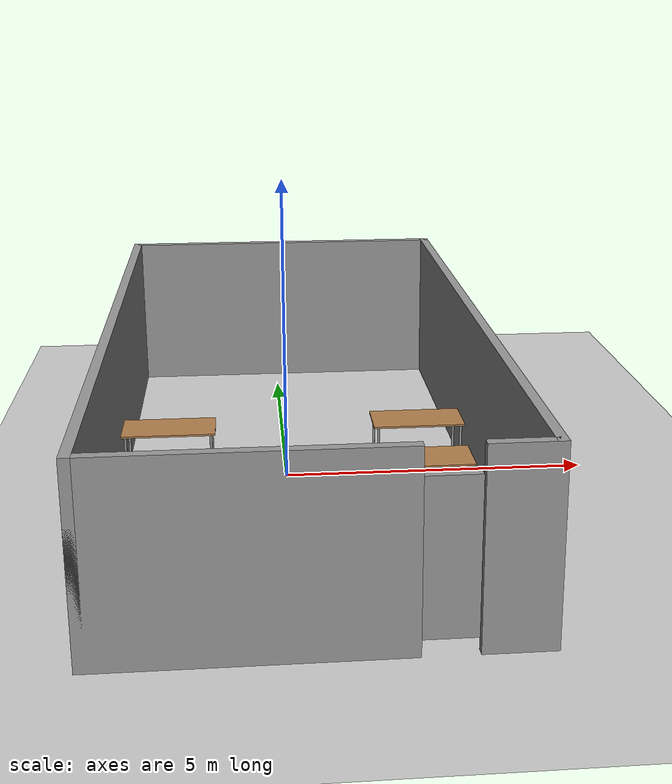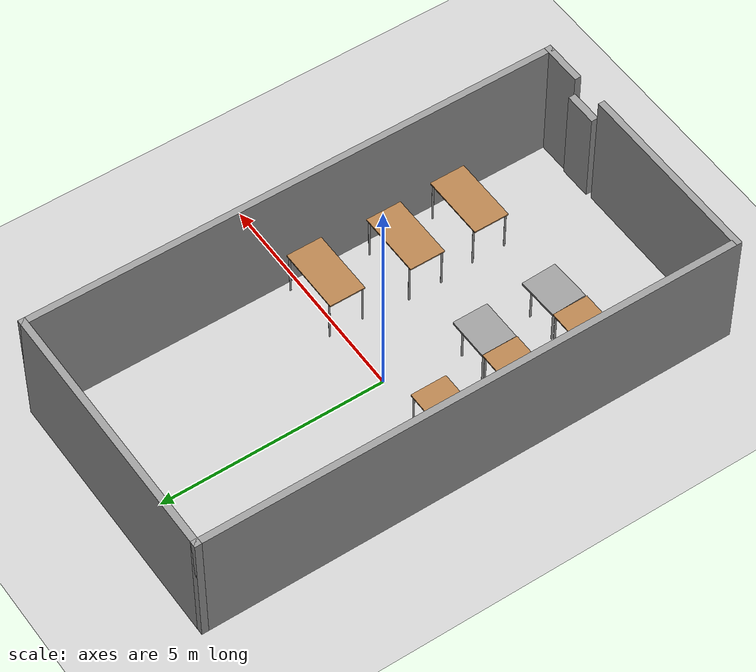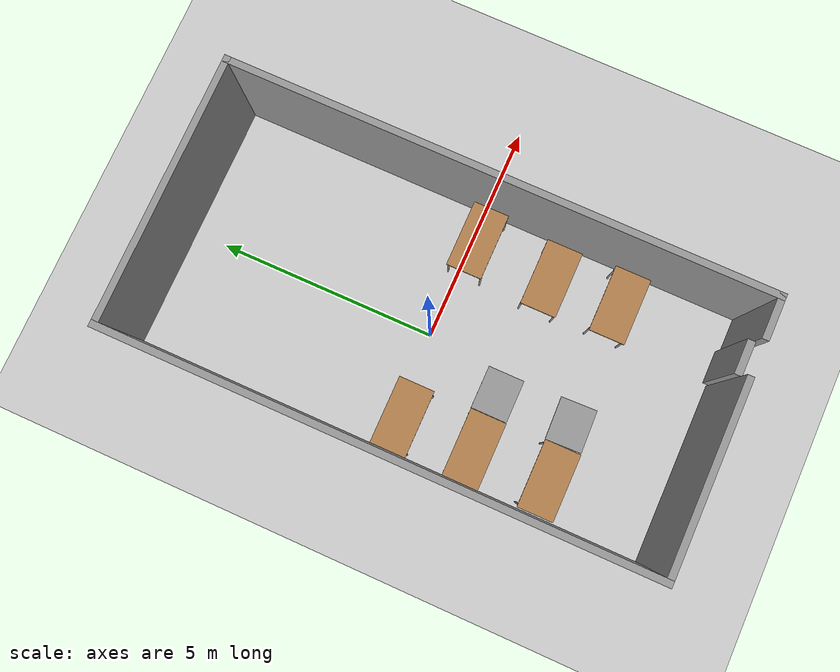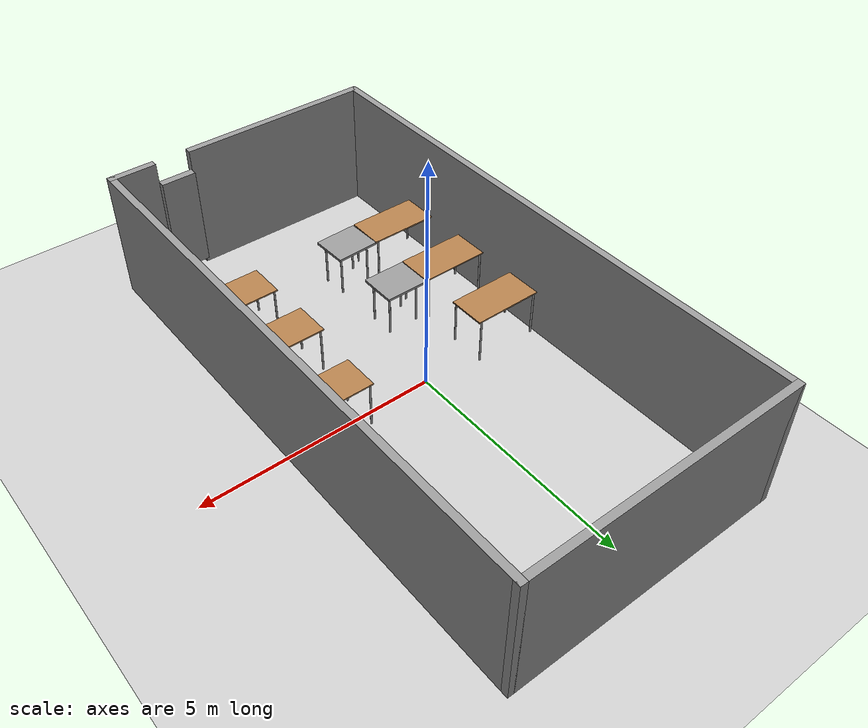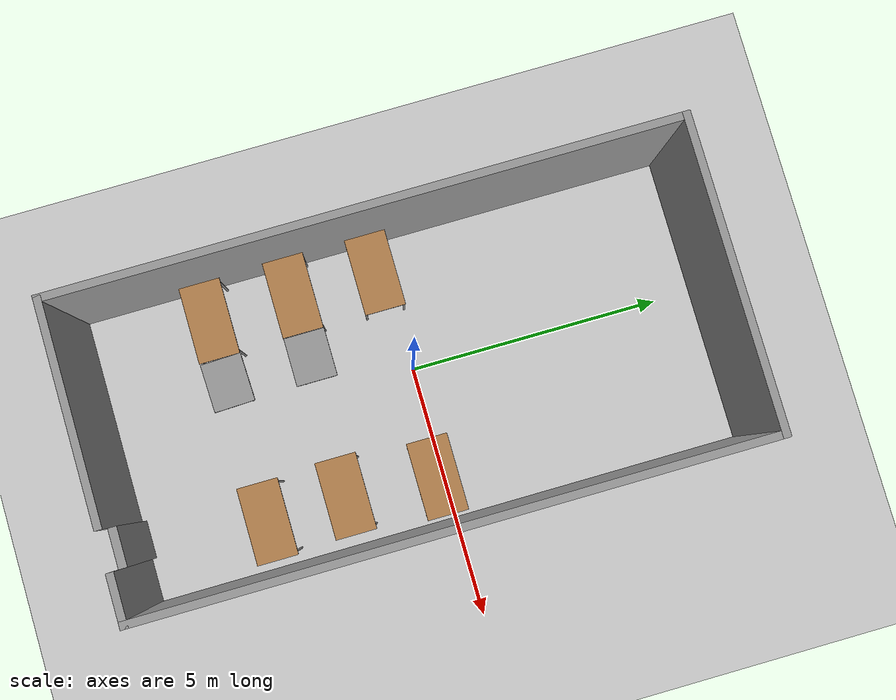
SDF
<sdf version="1.7">
 <world name="default">
  <model name="ground_plane">
   <static>1</static>
   <link name="link">
    <collision name="collision">
     <geometry><plane><normal>0 0 1</normal><size>100 100</size></plane></geometry>
     <surface>
      <contact><collide_bitmask>65535</collide_bitmask></contact>
      <friction><ode><mu>100</mu><mu2>50</mu2></ode></friction>
     </surface>
    </collision>
    <visual name="visual">
     <cast_shadows>0</cast_shadows>
     <geometry><plane><normal>0 0 1</normal><size>100 100</size></plane></geometry>
     <material>
      <script><uri>file://media/materials/scripts/gazebo.material</uri><name>Gazebo/Grey</name></script>
     </material>
    </visual>
   </link>
  </model>
  <model name="yh_room">
   <pose>0.178557 -0.120758 0 0 -0 0</pose>
   <link name="Wall_13">
    <collision name="Wall_13_Collision">
     <geometry><box><size>6 0.15 2.8</size></box></geometry>
     <pose>0 0 1.4 0 -0 0</pose>
    </collision>
    <visual name="Wall_13_Visual">
     <pose>0 0 1.4 0 -0 0</pose>
     <geometry><box><size>6 0.15 2.8</size></box></geometry>
     <material>
      <script><uri>file://media/materials/scripts/gazebo.material</uri><name>Gazebo/Grey</name></script>
      <ambient>1 1 1 1</ambient>
     </material>
     <meta><layer>0</layer></meta>
    </visual>
    <pose>-0 5.925 0 0 -0 0</pose>
   </link>
   <link name="Wall_15">
    <collision name="Wall_15_Collision">
     <geometry><box><size>12 0.15 2.8</size></box></geometry>
     <pose>0 0 1.4 0 -0 0</pose>
    </collision>
    <visual name="Wall_15_Visual">
     <pose>0 0 1.4 0 -0 0</pose>
     <geometry><box><size>12 0.15 2.8</size></box></geometry>
     <material>
      <script><uri>file://media/materials/scripts/gazebo.material</uri><name>Gazebo/Grey</name></script>
      <ambient>1 1 1 1</ambient>
     </material>
     <meta><layer>0</layer></meta>
    </visual>
    <pose>-2.925 0 0 0 -0 -1.5708</pose>
   </link>
   <link name="Wall_18">
    <collision name="Wall_18_Collision">
     <geometry><box><size>12 0.15 2.8</size></box></geometry>
     <pose>0 0 1.4 0 -0 0</pose>
    </collision>
    <visual name="Wall_18_Visual">
     <pose>0 0 1.4 0 -0 0</pose>
     <geometry><box><size>12 0.15 2.8</size></box></geometry>
     <material>
      <script><uri>file://media/materials/scripts/gazebo.material</uri><name>Gazebo/Grey</name></script>
      <ambient>1 1 1 1</ambient>
     </material>
     <meta><layer>0</layer></meta>
    </visual>
    <pose>2.925 0 0 0 -0 1.5708</pose>
   </link>
   <link name="Wall_21">
    <collision name="Wall_21_Collision">
     <geometry><box><size>1 0.15 2.8</size></box></geometry>
     <pose>0 0 1.4 0 -0 0</pose>
    </collision>
    <visual name="Wall_21_Visual">
     <pose>0 0 1.4 0 -0 0</pose>
     <geometry><box><size>1 0.15 2.8</size></box></geometry>
     <material>
      <script><uri>file://media/materials/scripts/gazebo.material</uri><name>Gazebo/Grey</name></script>
      <ambient>1 1 1 1</ambient>
     </material>
     <meta><layer>0</layer></meta>
    </visual>
    <pose>2.5 -5.925 0 0 -0 3.14159</pose>
   </link>
   <link name="Wall_23">
    <collision name="Wall_23_Collision">
     <geometry><box><size>4.25 0.15 2.8</size></box></geometry>
     <pose>0 0 1.4 0 -0 0</pose>
    </collision>
    <visual name="Wall_23_Visual">
     <pose>0 0 1.4 0 -0 0</pose>
     <geometry><box><size>4.25 0.15 2.8</size></box></geometry>
     <material>
      <script><uri>file://media/materials/scripts/gazebo.material</uri><name>Gazebo/Grey</name></script>
      <ambient>1 1 1 1</ambient>
     </material>
     <meta><layer>0</layer></meta>
    </visual>
    <pose>-0.875 -5.925 0 0 -0 0</pose>
   </link>
   <static>1</static>
  </model>
  <model name="table_clone_2">
   <static>1</static>
   <link name="link">
    <collision name="surface">
     <pose>0 0 1 0 -0 0</pose>
     <geometry><box><size>1.5 0.8 0.03</size></box></geometry>
     <surface><friction><ode><mu>0.6</mu><mu2>0.6</mu2></ode></friction></surface>
    </collision>
    <visual name="visual1">
     <pose>0 0 1 0 -0 0</pose>
     <geometry><box><size>1.5 0.8 0.03</size></box></geometry>
     <material>
      <script><uri>file://media/materials/scripts/gazebo.material</uri><name>Gazebo/Wood</name></script>
     </material>
    </visual>
    <collision name="front_left_leg">
     <pose>0.68 0.38 0.5 0 -0 0</pose>
     <geometry><cylinder><radius>0.02</radius><length>1</length></cylinder></geometry>
    </collision>
    <visual name="front_left_leg">
     <pose>0.68 0.38 0.5 0 -0 0</pose>
     <geometry><cylinder><radius>0.02</radius><length>1</length></cylinder></geometry>
     <material>
      <script><uri>file://media/materials/scripts/gazebo.material</uri><name>Gazebo/Grey</name></script>
     </material>
    </visual>
    <collision name="front_right_leg">
     <pose>0.68 -0.38 0.5 0 -0 0</pose>
     <geometry><cylinder><radius>0.02</radius><length>1</length></cylinder></geometry>
    </collision>
    <visual name="front_right_leg">
     <pose>0.68 -0.38 0.5 0 -0 0</pose>
     <geometry><cylinder><radius>0.02</radius><length>1</length></cylinder></geometry>
     <material>
      <script><uri>file://media/materials/scripts/gazebo.material</uri><name>Gazebo/Grey</name></script>
     </material>
    </visual>
    <collision name="back_right_leg">
     <pose>-0.68 -0.38 0.5 0 -0 0</pose>
     <geometry><cylinder><radius>0.02</radius><length>1</length></cylinder></geometry>
    </collision>
    <visual name="back_right_leg">
     <pose>-0.68 -0.38 0.5 0 -0 0</pose>
     <geometry><cylinder><radius>0.02</radius><length>1</length></cylinder></geometry>
     <material>
      <script><uri>file://media/materials/scripts/gazebo.material</uri><name>Gazebo/Grey</name></script>
     </material>
    </visual>
    <collision name="back_left_leg">
     <pose>-0.68 0.38 0.5 0 -0 0</pose>
     <geometry><cylinder><radius>0.02</radius><length>1</length></cylinder></geometry>
    </collision>
    <visual name="back_left_leg">
     <pose>-0.68 0.38 0.5 0 -0 0</pose>
     <geometry><cylinder><radius>0.02</radius><length>1</length></cylinder></geometry>
     <material>
      <script><uri>file://media/materials/scripts/gazebo.material</uri><name>Gazebo/Grey</name></script>
     </material>
    </visual>
   </link>
   <pose>-1.90852 -0.220594 0 0 -0 0</pose>
  </model>
  <model name="table_clone_3">
   <static>1</static>
   <link name="link">
    <collision name="surface">
     <pose>0 0 1 0 -0 0</pose>
     <geometry><box><size>1.5 0.8 0.03</size></box></geometry>
     <surface><friction><ode><mu>0.6</mu><mu2>0.6</mu2></ode></friction></surface>
    </collision>
    <visual name="visual1">
     <pose>0 0 1 0 -0 0</pose>
     <geometry><box><size>1.5 0.8 0.03</size></box></geometry>
     <material>
      <script><uri>file://media/materials/scripts/gazebo.material</uri><name>Gazebo/Wood</name></script>
     </material>
    </visual>
    <collision name="front_left_leg">
     <pose>0.68 0.38 0.5 0 -0 0</pose>
     <geometry><cylinder><radius>0.02</radius><length>1</length></cylinder></geometry>
    </collision>
    <visual name="front_left_leg">
     <pose>0.68 0.38 0.5 0 -0 0</pose>
     <geometry><cylinder><radius>0.02</radius><length>1</length></cylinder></geometry>
     <material>
      <script><uri>file://media/materials/scripts/gazebo.material</uri><name>Gazebo/Grey</name></script>
     </material>
    </visual>
    <collision name="front_right_leg">
     <pose>0.68 -0.38 0.5 0 -0 0</pose>
     <geometry><cylinder><radius>0.02</radius><length>1</length></cylinder></geometry>
    </collision>
    <visual name="front_right_leg">
     <pose>0.68 -0.38 0.5 0 -0 0</pose>
     <geometry><cylinder><radius>0.02</radius><length>1</length></cylinder></geometry>
     <material>
      <script><uri>file://media/materials/scripts/gazebo.material</uri><name>Gazebo/Grey</name></script>
     </material>
    </visual>
    <collision name="back_right_leg">
     <pose>-0.68 -0.38 0.5 0 -0 0</pose>
     <geometry><cylinder><radius>0.02</radius><length>1</length></cylinder></geometry>
    </collision>
    <visual name="back_right_leg">
     <pose>-0.68 -0.38 0.5 0 -0 0</pose>
     <geometry><cylinder><radius>0.02</radius><length>1</length></cylinder></geometry>
     <material>
      <script><uri>file://media/materials/scripts/gazebo.material</uri><name>Gazebo/Grey</name></script>
     </material>
    </visual>
    <collision name="back_left_leg">
     <pose>-0.68 0.38 0.5 0 -0 0</pose>
     <geometry><cylinder><radius>0.02</radius><length>1</length></cylinder></geometry>
    </collision>
    <visual name="back_left_leg">
     <pose>-0.68 0.38 0.5 0 -0 0</pose>
     <geometry><cylinder><radius>0.02</radius><length>1</length></cylinder></geometry>
     <material>
      <script><uri>file://media/materials/scripts/gazebo.material</uri><name>Gazebo/Grey</name></script>
     </material>
    </visual>
   </link>
   <pose>-1.91403 -1.85132 0 0 -0 0</pose>
  </model>
  <model name="table_clone_4">
   <static>1</static>
   <link name="link">
    <collision name="surface">
     <pose>0 0 1 0 -0 0</pose>
     <geometry><box><size>1.5 0.8 0.03</size></box></geometry>
     <surface><friction><ode><mu>0.6</mu><mu2>0.6</mu2></ode></friction></surface>
    </collision>
    <visual name="visual1">
     <pose>0 0 1 0 -0 0</pose>
     <geometry><box><size>1.5 0.8 0.03</size></box></geometry>
     <material>
      <script><uri>file://media/materials/scripts/gazebo.material</uri><name>Gazebo/Wood</name></script>
     </material>
    </visual>
    <collision name="front_left_leg">
     <pose>0.68 0.38 0.5 0 -0 0</pose>
     <geometry><cylinder><radius>0.02</radius><length>1</length></cylinder></geometry>
    </collision>
    <visual name="front_left_leg">
     <pose>0.68 0.38 0.5 0 -0 0</pose>
     <geometry><cylinder><radius>0.02</radius><length>1</length></cylinder></geometry>
     <material>
      <script><uri>file://media/materials/scripts/gazebo.material</uri><name>Gazebo/Grey</name></script>
     </material>
    </visual>
    <collision name="front_right_leg">
     <pose>0.68 -0.38 0.5 0 -0 0</pose>
     <geometry><cylinder><radius>0.02</radius><length>1</length></cylinder></geometry>
    </collision>
    <visual name="front_right_leg">
     <pose>0.68 -0.38 0.5 0 -0 0</pose>
     <geometry><cylinder><radius>0.02</radius><length>1</length></cylinder></geometry>
     <material>
      <script><uri>file://media/materials/scripts/gazebo.material</uri><name>Gazebo/Grey</name></script>
     </material>
    </visual>
    <collision name="back_right_leg">
     <pose>-0.68 -0.38 0.5 0 -0 0</pose>
     <geometry><cylinder><radius>0.02</radius><length>1</length></cylinder></geometry>
    </collision>
    <visual name="back_right_leg">
     <pose>-0.68 -0.38 0.5 0 -0 0</pose>
     <geometry><cylinder><radius>0.02</radius><length>1</length></cylinder></geometry>
     <material>
      <script><uri>file://media/materials/scripts/gazebo.material</uri><name>Gazebo/Grey</name></script>
     </material>
    </visual>
    <collision name="back_left_leg">
     <pose>-0.68 0.38 0.5 0 -0 0</pose>
     <geometry><cylinder><radius>0.02</radius><length>1</length></cylinder></geometry>
    </collision>
    <visual name="back_left_leg">
     <pose>-0.68 0.38 0.5 0 -0 0</pose>
     <geometry><cylinder><radius>0.02</radius><length>1</length></cylinder></geometry>
     <material>
      <script><uri>file://media/materials/scripts/gazebo.material</uri><name>Gazebo/Grey</name></script>
     </material>
    </visual>
   </link>
   <pose>-1.87955 -3.51213 0 0 -0 0</pose>
  </model>
  <model name="table_clone_5">
   <static>1</static>
   <link name="link">
    <collision name="surface">
     <pose>0 0 1 0 -0 0</pose>
     <geometry><box><size>1.5 0.8 0.03</size></box></geometry>
     <surface><friction><ode><mu>0.6</mu><mu2>0.6</mu2></ode></friction></surface>
    </collision>
    <visual name="visual1">
     <pose>0 0 1 0 -0 0</pose>
     <geometry><box><size>1.5 0.8 0.03</size></box></geometry>
     <material>
      <script><uri>file://media/materials/scripts/gazebo.material</uri><name>Gazebo/Wood</name></script>
     </material>
    </visual>
    <collision name="front_left_leg">
     <pose>0.68 0.38 0.5 0 -0 0</pose>
     <geometry><cylinder><radius>0.02</radius><length>1</length></cylinder></geometry>
    </collision>
    <visual name="front_left_leg">
     <pose>0.68 0.38 0.5 0 -0 0</pose>
     <geometry><cylinder><radius>0.02</radius><length>1</length></cylinder></geometry>
     <material>
      <script><uri>file://media/materials/scripts/gazebo.material</uri><name>Gazebo/Grey</name></script>
     </material>
    </visual>
    <collision name="front_right_leg">
     <pose>0.68 -0.38 0.5 0 -0 0</pose>
     <geometry><cylinder><radius>0.02</radius><length>1</length></cylinder></geometry>
    </collision>
    <visual name="front_right_leg">
     <pose>0.68 -0.38 0.5 0 -0 0</pose>
     <geometry><cylinder><radius>0.02</radius><length>1</length></cylinder></geometry>
     <material>
      <script><uri>file://media/materials/scripts/gazebo.material</uri><name>Gazebo/Grey</name></script>
     </material>
    </visual>
    <collision name="back_right_leg">
     <pose>-0.68 -0.38 0.5 0 -0 0</pose>
     <geometry><cylinder><radius>0.02</radius><length>1</length></cylinder></geometry>
    </collision>
    <visual name="back_right_leg">
     <pose>-0.68 -0.38 0.5 0 -0 0</pose>
     <geometry><cylinder><radius>0.02</radius><length>1</length></cylinder></geometry>
     <material>
      <script><uri>file://media/materials/scripts/gazebo.material</uri><name>Gazebo/Grey</name></script>
     </material>
    </visual>
    <collision name="back_left_leg">
     <pose>-0.68 0.38 0.5 0 -0 0</pose>
     <geometry><cylinder><radius>0.02</radius><length>1</length></cylinder></geometry>
    </collision>
    <visual name="back_left_leg">
     <pose>-0.68 0.38 0.5 0 -0 0</pose>
     <geometry><cylinder><radius>0.02</radius><length>1</length></cylinder></geometry>
     <material>
      <script><uri>file://media/materials/scripts/gazebo.material</uri><name>Gazebo/Grey</name></script>
     </material>
    </visual>
   </link>
   <pose>2.16456 -0.152006 0 0 -0 0</pose>
  </model>
  <model name="table_clone_6">
   <static>1</static>
   <link name="link">
    <collision name="surface">
     <pose>0 0 1 0 -0 0</pose>
     <geometry><box><size>1.5 0.8 0.03</size></box></geometry>
     <surface><friction><ode><mu>0.6</mu><mu2>0.6</mu2></ode></friction></surface>
    </collision>
    <visual name="visual1">
     <pose>0 0 1 0 -0 0</pose>
     <geometry><box><size>1.5 0.8 0.03</size></box></geometry>
     <material>
      <script><uri>file://media/materials/scripts/gazebo.material</uri><name>Gazebo/Wood</name></script>
     </material>
    </visual>
    <collision name="front_left_leg">
     <pose>0.68 0.38 0.5 0 -0 0</pose>
     <geometry><cylinder><radius>0.02</radius><length>1</length></cylinder></geometry>
    </collision>
    <visual name="front_left_leg">
     <pose>0.68 0.38 0.5 0 -0 0</pose>
     <geometry><cylinder><radius>0.02</radius><length>1</length></cylinder></geometry>
     <material>
      <script><uri>file://media/materials/scripts/gazebo.material</uri><name>Gazebo/Grey</name></script>
     </material>
    </visual>
    <collision name="front_right_leg">
     <pose>0.68 -0.38 0.5 0 -0 0</pose>
     <geometry><cylinder><radius>0.02</radius><length>1</length></cylinder></geometry>
    </collision>
    <visual name="front_right_leg">
     <pose>0.68 -0.38 0.5 0 -0 0</pose>
     <geometry><cylinder><radius>0.02</radius><length>1</length></cylinder></geometry>
     <material>
      <script><uri>file://media/materials/scripts/gazebo.material</uri><name>Gazebo/Grey</name></script>
     </material>
    </visual>
    <collision name="back_right_leg">
     <pose>-0.68 -0.38 0.5 0 -0 0</pose>
     <geometry><cylinder><radius>0.02</radius><length>1</length></cylinder></geometry>
    </collision>
    <visual name="back_right_leg">
     <pose>-0.68 -0.38 0.5 0 -0 0</pose>
     <geometry><cylinder><radius>0.02</radius><length>1</length></cylinder></geometry>
     <material>
      <script><uri>file://media/materials/scripts/gazebo.material</uri><name>Gazebo/Grey</name></script>
     </material>
    </visual>
    <collision name="back_left_leg">
     <pose>-0.68 0.38 0.5 0 -0 0</pose>
     <geometry><cylinder><radius>0.02</radius><length>1</length></cylinder></geometry>
    </collision>
    <visual name="back_left_leg">
     <pose>-0.68 0.38 0.5 0 -0 0</pose>
     <geometry><cylinder><radius>0.02</radius><length>1</length></cylinder></geometry>
     <material>
      <script><uri>file://media/materials/scripts/gazebo.material</uri><name>Gazebo/Grey</name></script>
     </material>
    </visual>
   </link>
   <pose>2.03753 -1.9148 0 0 -0 0</pose>
  </model>
  <model name="table_clone_7">
   <static>1</static>
   <link name="link">
    <collision name="surface">
     <pose>0 0 1 0 -0 0</pose>
     <geometry><box><size>1.5 0.8 0.03</size></box></geometry>
     <surface><friction><ode><mu>0.6</mu><mu2>0.6</mu2></ode></friction></surface>
    </collision>
    <visual name="visual1">
     <pose>0 0 1 0 -0 0</pose>
     <geometry><box><size>1.5 0.8 0.03</size></box></geometry>
     <material>
      <script><uri>file://media/materials/scripts/gazebo.material</uri><name>Gazebo/Wood</name></script>
     </material>
    </visual>
    <collision name="front_left_leg">
     <pose>0.68 0.38 0.5 0 -0 0</pose>
     <geometry><cylinder><radius>0.02</radius><length>1</length></cylinder></geometry>
    </collision>
    <visual name="front_left_leg">
     <pose>0.68 0.38 0.5 0 -0 0</pose>
     <geometry><cylinder><radius>0.02</radius><length>1</length></cylinder></geometry>
     <material>
      <script><uri>file://media/materials/scripts/gazebo.material</uri><name>Gazebo/Grey</name></script>
     </material>
    </visual>
    <collision name="front_right_leg">
     <pose>0.68 -0.38 0.5 0 -0 0</pose>
     <geometry><cylinder><radius>0.02</radius><length>1</length></cylinder></geometry>
    </collision>
    <visual name="front_right_leg">
     <pose>0.68 -0.38 0.5 0 -0 0</pose>
     <geometry><cylinder><radius>0.02</radius><length>1</length></cylinder></geometry>
     <material>
      <script><uri>file://media/materials/scripts/gazebo.material</uri><name>Gazebo/Grey</name></script>
     </material>
    </visual>
    <collision name="back_right_leg">
     <pose>-0.68 -0.38 0.5 0 -0 0</pose>
     <geometry><cylinder><radius>0.02</radius><length>1</length></cylinder></geometry>
    </collision>
    <visual name="back_right_leg">
     <pose>-0.68 -0.38 0.5 0 -0 0</pose>
     <geometry><cylinder><radius>0.02</radius><length>1</length></cylinder></geometry>
     <material>
      <script><uri>file://media/materials/scripts/gazebo.material</uri><name>Gazebo/Grey</name></script>
     </material>
    </visual>
    <collision name="back_left_leg">
     <pose>-0.68 0.38 0.5 0 -0 0</pose>
     <geometry><cylinder><radius>0.02</radius><length>1</length></cylinder></geometry>
    </collision>
    <visual name="back_left_leg">
     <pose>-0.68 0.38 0.5 0 -0 0</pose>
     <geometry><cylinder><radius>0.02</radius><length>1</length></cylinder></geometry>
     <material>
      <script><uri>file://media/materials/scripts/gazebo.material</uri><name>Gazebo/Grey</name></script>
     </material>
    </visual>
   </link>
   <pose>2.09447 -3.46015 0 0 -0 0</pose>
  </model>
  <model name="503smalldesk_clone_1">
   <link name="link">
    <inertial>
     <mass>0.0369798</mass>
     <inertia>
      <ixx>0.00196522</ixx>
      <ixy>0</ixy>
      <ixz>0</ixz>
      <iyy>0.00276457</iyy>
      <iyz>0</iyz>
      <izz>0.00471494</izz>
     </inertia>
    </inertial>
    <pose>-0.646649 -1.26581 0.489389 0 -0 0</pose>
    <visual name="visual">
     <geometry><box><size>0.945885 0.797062 0.049088</size></box></geometry>
     <material>
      <script><name>Gazebo/Grey</name><uri>file://media/materials/scripts/gazebo.material</uri></script>
      <shader type="pixel"/>
      <emissive>0 0 0 1</emissive>
     </material>
    </visual>
    <collision name="collision">
     <geometry><box><size>0.945885 0.797062 0.049088</size></box></geometry>
     <surface>
      <friction>
       <ode><mu>1</mu><mu2>1</mu2><fdir1>0 0 0</fdir1><slip1>0</slip1><slip2>0</slip2></ode>
       <torsional>
        <coefficient>1</coefficient>
        <patch_radius>0</patch_radius>
        <surface_radius>0</surface_radius>
        <use_patch_radius>1</use_patch_radius>
        <ode><slip>0</slip></ode>
       </torsional>
      </friction>
      <bounce><restitution_coefficient>0</restitution_coefficient><threshold>1e+06</threshold></bounce>
      <contact>
       <collide_without_contact>0</collide_without_contact>
       <collide_without_contact_bitmask>1</collide_without_contact_bitmask>
       <collide_bitmask>1</collide_bitmask>
       <ode>
        <soft_cfm>0</soft_cfm>
        <soft_erp>0.2</soft_erp>
        <kp>1e+13</kp>
        <kd>1</kd>
        <max_vel>0.01</max_vel>
        <min_depth>0</min_depth>
       </ode>
       <bullet>
        <split_impulse>1</split_impulse>
        <split_impulse_penetration_threshold>-0.01</split_impulse_penetration_threshold>
        <soft_cfm>0</soft_cfm>
        <soft_erp>0.2</soft_erp>
        <kp>1e+13</kp>
        <kd>1</kd>
       </bullet>
      </contact>
     </surface>
    </collision>
   </link>
   <link name="link_0">
    <inertial>
     <mass>0.00191364</mass>
     <inertia>
      <ixx>0.000157258</ixx>
      <ixy>0</ixy>
      <ixz>0</ixz>
      <iyy>0.000157258</iyy>
      <iyz>0</iyz>
      <izz>4.33466e-07</izz>
     </inertia>
    </inertial>
    <pose>-0.966123 -1.52923 -0.000879 1e-05 -0 0</pose>
    <visual name="visual">
     <geometry><cylinder><radius>0.0212844</radius><length>0.992355</length></cylinder></geometry>
     <material>
      <lighting>1</lighting>
      <script><uri>file://media/materials/scripts/gazebo.material</uri><name>Gazebo/Grey</name></script>
      <shader type="pixel"/>
      <emissive>0 0 0 1</emissive>
     </material>
    </visual>
    <collision name="collision">
     <geometry><cylinder><radius>0.021284</radius><length>0.992355</length></cylinder></geometry>
     <surface>
      <friction>
       <ode><mu>1</mu><mu2>1</mu2><fdir1>0 0 0</fdir1><slip1>0</slip1><slip2>0</slip2></ode>
       <torsional>
        <coefficient>1</coefficient>
        <patch_radius>0</patch_radius>
        <surface_radius>0</surface_radius>
        <use_patch_radius>1</use_patch_radius>
        <ode><slip>0</slip></ode>
       </torsional>
      </friction>
      <bounce><restitution_coefficient>0</restitution_coefficient><threshold>1e+06</threshold></bounce>
      <contact>
       <collide_without_contact>0</collide_without_contact>
       <collide_without_contact_bitmask>1</collide_without_contact_bitmask>
       <collide_bitmask>1</collide_bitmask>
       <ode>
        <soft_cfm>0</soft_cfm>
        <soft_erp>0.2</soft_erp>
        <kp>1e+13</kp>
        <kd>1</kd>
        <max_vel>0.01</max_vel>
        <min_depth>0</min_depth>
       </ode>
       <bullet>
        <split_impulse>1</split_impulse>
        <split_impulse_penetration_threshold>-0.01</split_impulse_penetration_threshold>
        <soft_cfm>0</soft_cfm>
        <soft_erp>0.2</soft_erp>
        <kp>1e+13</kp>
        <kd>1</kd>
       </bullet>
      </contact>
     </surface>
    </collision>
   </link>
   <link name="link_0_clone">
    <inertial>
     <mass>0.00191456</mass>
     <inertia>
      <ixx>0.000157333</ixx>
      <ixy>0</ixy>
      <ixz>0</ixz>
      <iyy>0.000157333</iyy>
      <iyz>0</iyz>
      <izz>4.33672e-07</izz>
     </inertia>
    </inertial>
    <pose>-0.293148 -1.53733 -0.000894 2e-05 -0 0</pose>
    <visual name="visual">
     <geometry><cylinder><radius>0.0212844</radius><length>0.992355</length></cylinder></geometry>
     <material>
      <lighting>1</lighting>
      <script><uri>file://media/materials/scripts/gazebo.material</uri><name>Gazebo/Grey</name></script>
      <shader type="pixel"/>
      <emissive>0 0 0 1</emissive>
     </material>
    </visual>
    <collision name="collision">
     <geometry><cylinder><radius>0.021284</radius><length>0.992355</length></cylinder></geometry>
     <surface>
      <friction>
       <ode><mu>1</mu><mu2>1</mu2><fdir1>0 0 0</fdir1><slip1>0</slip1><slip2>0</slip2></ode>
       <torsional>
        <coefficient>1</coefficient>
        <patch_radius>0</patch_radius>
        <surface_radius>0</surface_radius>
        <use_patch_radius>1</use_patch_radius>
        <ode><slip>0</slip></ode>
       </torsional>
      </friction>
      <bounce><restitution_coefficient>0</restitution_coefficient><threshold>1e+06</threshold></bounce>
      <contact>
       <collide_without_contact>0</collide_without_contact>
       <collide_without_contact_bitmask>1</collide_without_contact_bitmask>
       <collide_bitmask>1</collide_bitmask>
       <ode>
        <soft_cfm>0</soft_cfm>
        <soft_erp>0.2</soft_erp>
        <kp>1e+13</kp>
        <kd>1</kd>
        <max_vel>0.01</max_vel>
        <min_depth>0</min_depth>
       </ode>
       <bullet>
        <split_impulse>1</split_impulse>
        <split_impulse_penetration_threshold>-0.01</split_impulse_penetration_threshold>
        <soft_cfm>0</soft_cfm>
        <soft_erp>0.2</soft_erp>
        <kp>1e+13</kp>
        <kd>1</kd>
       </bullet>
      </contact>
     </surface>
    </collision>
   </link>
   <link name="link_0_clone_0">
    <inertial>
     <mass>0.00191364</mass>
     <inertia>
      <ixx>0.000157258</ixx>
      <ixy>0</ixy>
      <ixz>0</ixz>
      <iyy>0.000157258</iyy>
      <iyz>0</iyz>
      <izz>4.33466e-07</izz>
     </inertia>
    </inertial>
    <pose>-0.297233 -1.01304 -0.000889 2e-05 -0 0</pose>
    <visual name="visual">
     <geometry><cylinder><radius>0.0212844</radius><length>0.992355</length></cylinder></geometry>
     <material>
      <lighting>1</lighting>
      <script><uri>file://media/materials/scripts/gazebo.material</uri><name>Gazebo/Grey</name></script>
      <shader type="pixel"/>
      <emissive>0 0 0 1</emissive>
     </material>
    </visual>
    <collision name="collision">
     <geometry><cylinder><radius>0.021284</radius><length>0.992355</length></cylinder></geometry>
     <surface>
      <friction>
       <ode><mu>1</mu><mu2>1</mu2><fdir1>0 0 0</fdir1><slip1>0</slip1><slip2>0</slip2></ode>
       <torsional>
        <coefficient>1</coefficient>
        <patch_radius>0</patch_radius>
        <surface_radius>0</surface_radius>
        <use_patch_radius>1</use_patch_radius>
        <ode><slip>0</slip></ode>
       </torsional>
      </friction>
      <bounce><restitution_coefficient>0</restitution_coefficient><threshold>1e+06</threshold></bounce>
      <contact>
       <collide_without_contact>0</collide_without_contact>
       <collide_without_contact_bitmask>1</collide_without_contact_bitmask>
       <collide_bitmask>1</collide_bitmask>
       <ode>
        <soft_cfm>0</soft_cfm>
        <soft_erp>0.2</soft_erp>
        <kp>1e+13</kp>
        <kd>1</kd>
        <max_vel>0.01</max_vel>
        <min_depth>0</min_depth>
       </ode>
       <bullet>
        <split_impulse>1</split_impulse>
        <split_impulse_penetration_threshold>-0.01</split_impulse_penetration_threshold>
        <soft_cfm>0</soft_cfm>
        <soft_erp>0.2</soft_erp>
        <kp>1e+13</kp>
        <kd>1</kd>
       </bullet>
      </contact>
     </surface>
    </collision>
   </link>
   <link name="link_0_clone_1">
    <inertial>
     <mass>0.00191364</mass>
     <inertia>
      <ixx>0.000157258</ixx>
      <ixy>0</ixy>
      <ixz>0</ixz>
      <iyy>0.000157258</iyy>
      <iyz>0</iyz>
      <izz>4.33466e-07</izz>
     </inertia>
    </inertial>
    <pose>-0.969588 -1.01272 -0.000889 2e-05 -0 0</pose>
    <visual name="visual">
     <geometry><cylinder><radius>0.0212844</radius><length>0.992355</length></cylinder></geometry>
     <material>
      <lighting>1</lighting>
      <script><uri>file://media/materials/scripts/gazebo.material</uri><name>Gazebo/Grey</name></script>
      <shader type="pixel"/>
      <emissive>0 0 0 1</emissive>
     </material>
    </visual>
    <collision name="collision">
     <geometry><cylinder><radius>0.021284</radius><length>0.992355</length></cylinder></geometry>
     <surface>
      <friction>
       <ode><mu>1</mu><mu2>1</mu2><fdir1>0 0 0</fdir1><slip1>0</slip1><slip2>0</slip2></ode>
       <torsional>
        <coefficient>1</coefficient>
        <patch_radius>0</patch_radius>
        <surface_radius>0</surface_radius>
        <use_patch_radius>1</use_patch_radius>
        <ode><slip>0</slip></ode>
       </torsional>
      </friction>
      <bounce><restitution_coefficient>0</restitution_coefficient><threshold>1e+06</threshold></bounce>
      <contact>
       <collide_without_contact>0</collide_without_contact>
       <collide_without_contact_bitmask>1</collide_without_contact_bitmask>
       <collide_bitmask>1</collide_bitmask>
       <ode>
        <soft_cfm>0</soft_cfm>
        <soft_erp>0.2</soft_erp>
        <kp>1e+13</kp>
        <kd>1</kd>
        <max_vel>0.01</max_vel>
        <min_depth>0</min_depth>
       </ode>
       <bullet>
        <split_impulse>1</split_impulse>
        <split_impulse_penetration_threshold>-0.01</split_impulse_penetration_threshold>
        <soft_cfm>0</soft_cfm>
        <soft_erp>0.2</soft_erp>
        <kp>1e+13</kp>
        <kd>1</kd>
       </bullet>
      </contact>
     </surface>
    </collision>
   </link>
   <joint name="link_JOINT_13" type="fixed">
    <parent>link</parent>
    <child>link_0</child>
    <physics>
     <ode><limit><cfm>0</cfm><erp>0.2</erp></limit><suspension><cfm>0</cfm><erp>0.2</erp></suspension></ode>
    </physics>
   </joint>
   <joint name="link_JOINT_14" type="fixed">
    <parent>link</parent>
    <child>link_0_clone_1</child>
    <physics>
     <ode><limit><cfm>0</cfm><erp>0.2</erp></limit><suspension><cfm>0</cfm><erp>0.2</erp></suspension></ode>
    </physics>
   </joint>
   <joint name="link_JOINT_15" type="fixed">
    <parent>link</parent>
    <child>link_0_clone_0</child>
    <physics>
     <ode><limit><cfm>0</cfm><erp>0.2</erp></limit><suspension><cfm>0</cfm><erp>0.2</erp></suspension></ode>
    </physics>
   </joint>
   <joint name="link_JOINT_16" type="fixed">
    <parent>link</parent>
    <child>link_0_clone</child>
    <physics>
     <ode><limit><cfm>0</cfm><erp>0.2</erp></limit><suspension><cfm>0</cfm><erp>0.2</erp></suspension></ode>
    </physics>
   </joint>
   <static>0</static>
   <pose>-0.035513 -0.578262 0.497073 5e-06 -1.1e-05 0.000363</pose>
  </model>
  <model name="503smalldesk_clone_2">
   <link name="link">
    <inertial>
     <mass>0.0369798</mass>
     <inertia>
      <ixx>0.00196522</ixx>
      <ixy>0</ixy>
      <ixz>0</ixz>
      <iyy>0.00276457</iyy>
      <iyz>0</iyz>
      <izz>0.00471494</izz>
     </inertia>
    </inertial>
    <pose>-0.646649 -1.26581 0.489389 0 -0 0</pose>
    <visual name="visual">
     <geometry><box><size>0.945885 0.797062 0.049088</size></box></geometry>
     <material>
      <script><name>Gazebo/Grey</name><uri>file://media/materials/scripts/gazebo.material</uri></script>
      <shader type="pixel"/>
      <emissive>0 0 0 1</emissive>
     </material>
    </visual>
    <collision name="collision">
     <geometry><box><size>0.945885 0.797062 0.049088</size></box></geometry>
     <surface>
      <friction>
       <ode><mu>1</mu><mu2>1</mu2><fdir1>0 0 0</fdir1><slip1>0</slip1><slip2>0</slip2></ode>
       <torsional>
        <coefficient>1</coefficient>
        <patch_radius>0</patch_radius>
        <surface_radius>0</surface_radius>
        <use_patch_radius>1</use_patch_radius>
        <ode><slip>0</slip></ode>
       </torsional>
      </friction>
      <bounce><restitution_coefficient>0</restitution_coefficient><threshold>1e+06</threshold></bounce>
      <contact>
       <collide_without_contact>0</collide_without_contact>
       <collide_without_contact_bitmask>1</collide_without_contact_bitmask>
       <collide_bitmask>1</collide_bitmask>
       <ode>
        <soft_cfm>0</soft_cfm>
        <soft_erp>0.2</soft_erp>
        <kp>1e+13</kp>
        <kd>1</kd>
        <max_vel>0.01</max_vel>
        <min_depth>0</min_depth>
       </ode>
       <bullet>
        <split_impulse>1</split_impulse>
        <split_impulse_penetration_threshold>-0.01</split_impulse_penetration_threshold>
        <soft_cfm>0</soft_cfm>
        <soft_erp>0.2</soft_erp>
        <kp>1e+13</kp>
        <kd>1</kd>
       </bullet>
      </contact>
     </surface>
    </collision>
   </link>
   <link name="link_0">
    <inertial>
     <mass>0.00191364</mass>
     <inertia>
      <ixx>0.000157258</ixx>
      <ixy>0</ixy>
      <ixz>0</ixz>
      <iyy>0.000157258</iyy>
      <iyz>0</iyz>
      <izz>4.33466e-07</izz>
     </inertia>
    </inertial>
    <pose>-0.966123 -1.52923 -0.000879 1e-05 -0 0</pose>
    <visual name="visual">
     <geometry><cylinder><radius>0.0212844</radius><length>0.992355</length></cylinder></geometry>
     <material>
      <lighting>1</lighting>
      <script><uri>file://media/materials/scripts/gazebo.material</uri><name>Gazebo/Grey</name></script>
      <shader type="pixel"/>
      <emissive>0 0 0 1</emissive>
     </material>
    </visual>
    <collision name="collision">
     <geometry><cylinder><radius>0.021284</radius><length>0.992355</length></cylinder></geometry>
     <surface>
      <friction>
       <ode><mu>1</mu><mu2>1</mu2><fdir1>0 0 0</fdir1><slip1>0</slip1><slip2>0</slip2></ode>
       <torsional>
        <coefficient>1</coefficient>
        <patch_radius>0</patch_radius>
        <surface_radius>0</surface_radius>
        <use_patch_radius>1</use_patch_radius>
        <ode><slip>0</slip></ode>
       </torsional>
      </friction>
      <bounce><restitution_coefficient>0</restitution_coefficient><threshold>1e+06</threshold></bounce>
      <contact>
       <collide_without_contact>0</collide_without_contact>
       <collide_without_contact_bitmask>1</collide_without_contact_bitmask>
       <collide_bitmask>1</collide_bitmask>
       <ode>
        <soft_cfm>0</soft_cfm>
        <soft_erp>0.2</soft_erp>
        <kp>1e+13</kp>
        <kd>1</kd>
        <max_vel>0.01</max_vel>
        <min_depth>0</min_depth>
       </ode>
       <bullet>
        <split_impulse>1</split_impulse>
        <split_impulse_penetration_threshold>-0.01</split_impulse_penetration_threshold>
        <soft_cfm>0</soft_cfm>
        <soft_erp>0.2</soft_erp>
        <kp>1e+13</kp>
        <kd>1</kd>
       </bullet>
      </contact>
     </surface>
    </collision>
   </link>
   <link name="link_0_clone">
    <inertial>
     <mass>0.00191456</mass>
     <inertia>
      <ixx>0.000157333</ixx>
      <ixy>0</ixy>
      <ixz>0</ixz>
      <iyy>0.000157333</iyy>
      <iyz>0</iyz>
      <izz>4.33672e-07</izz>
     </inertia>
    </inertial>
    <pose>-0.293148 -1.53733 -0.000894 2e-05 -0 0</pose>
    <visual name="visual">
     <geometry><cylinder><radius>0.0212844</radius><length>0.992355</length></cylinder></geometry>
     <material>
      <lighting>1</lighting>
      <script><uri>file://media/materials/scripts/gazebo.material</uri><name>Gazebo/Grey</name></script>
      <shader type="pixel"/>
      <emissive>0 0 0 1</emissive>
     </material>
    </visual>
    <collision name="collision">
     <geometry><cylinder><radius>0.021284</radius><length>0.992355</length></cylinder></geometry>
     <surface>
      <friction>
       <ode><mu>1</mu><mu2>1</mu2><fdir1>0 0 0</fdir1><slip1>0</slip1><slip2>0</slip2></ode>
       <torsional>
        <coefficient>1</coefficient>
        <patch_radius>0</patch_radius>
        <surface_radius>0</surface_radius>
        <use_patch_radius>1</use_patch_radius>
        <ode><slip>0</slip></ode>
       </torsional>
      </friction>
      <bounce><restitution_coefficient>0</restitution_coefficient><threshold>1e+06</threshold></bounce>
      <contact>
       <collide_without_contact>0</collide_without_contact>
       <collide_without_contact_bitmask>1</collide_without_contact_bitmask>
       <collide_bitmask>1</collide_bitmask>
       <ode>
        <soft_cfm>0</soft_cfm>
        <soft_erp>0.2</soft_erp>
        <kp>1e+13</kp>
        <kd>1</kd>
        <max_vel>0.01</max_vel>
        <min_depth>0</min_depth>
       </ode>
       <bullet>
        <split_impulse>1</split_impulse>
        <split_impulse_penetration_threshold>-0.01</split_impulse_penetration_threshold>
        <soft_cfm>0</soft_cfm>
        <soft_erp>0.2</soft_erp>
        <kp>1e+13</kp>
        <kd>1</kd>
       </bullet>
      </contact>
     </surface>
    </collision>
   </link>
   <link name="link_0_clone_0">
    <inertial>
     <mass>0.00191364</mass>
     <inertia>
      <ixx>0.000157258</ixx>
      <ixy>0</ixy>
      <ixz>0</ixz>
      <iyy>0.000157258</iyy>
      <iyz>0</iyz>
      <izz>4.33466e-07</izz>
     </inertia>
    </inertial>
    <pose>-0.297233 -1.01304 -0.000889 2e-05 -0 0</pose>
    <visual name="visual">
     <geometry><cylinder><radius>0.0212844</radius><length>0.992355</length></cylinder></geometry>
     <material>
      <lighting>1</lighting>
      <script><uri>file://media/materials/scripts/gazebo.material</uri><name>Gazebo/Grey</name></script>
      <shader type="pixel"/>
      <emissive>0 0 0 1</emissive>
     </material>
    </visual>
    <collision name="collision">
     <geometry><cylinder><radius>0.021284</radius><length>0.992355</length></cylinder></geometry>
     <surface>
      <friction>
       <ode><mu>1</mu><mu2>1</mu2><fdir1>0 0 0</fdir1><slip1>0</slip1><slip2>0</slip2></ode>
       <torsional>
        <coefficient>1</coefficient>
        <patch_radius>0</patch_radius>
        <surface_radius>0</surface_radius>
        <use_patch_radius>1</use_patch_radius>
        <ode><slip>0</slip></ode>
       </torsional>
      </friction>
      <bounce><restitution_coefficient>0</restitution_coefficient><threshold>1e+06</threshold></bounce>
      <contact>
       <collide_without_contact>0</collide_without_contact>
       <collide_without_contact_bitmask>1</collide_without_contact_bitmask>
       <collide_bitmask>1</collide_bitmask>
       <ode>
        <soft_cfm>0</soft_cfm>
        <soft_erp>0.2</soft_erp>
        <kp>1e+13</kp>
        <kd>1</kd>
        <max_vel>0.01</max_vel>
        <min_depth>0</min_depth>
       </ode>
       <bullet>
        <split_impulse>1</split_impulse>
        <split_impulse_penetration_threshold>-0.01</split_impulse_penetration_threshold>
        <soft_cfm>0</soft_cfm>
        <soft_erp>0.2</soft_erp>
        <kp>1e+13</kp>
        <kd>1</kd>
       </bullet>
      </contact>
     </surface>
    </collision>
   </link>
   <link name="link_0_clone_1">
    <inertial>
     <mass>0.00191364</mass>
     <inertia>
      <ixx>0.000157258</ixx>
      <ixy>0</ixy>
      <ixz>0</ixz>
      <iyy>0.000157258</iyy>
      <iyz>0</iyz>
      <izz>4.33466e-07</izz>
     </inertia>
    </inertial>
    <pose>-0.969588 -1.01272 -0.000889 2e-05 -0 0</pose>
    <visual name="visual">
     <geometry><cylinder><radius>0.0212844</radius><length>0.992355</length></cylinder></geometry>
     <material>
      <lighting>1</lighting>
      <script><uri>file://media/materials/scripts/gazebo.material</uri><name>Gazebo/Grey</name></script>
      <shader type="pixel"/>
      <emissive>0 0 0 1</emissive>
     </material>
    </visual>
    <collision name="collision">
     <geometry><cylinder><radius>0.021284</radius><length>0.992355</length></cylinder></geometry>
     <surface>
      <friction>
       <ode><mu>1</mu><mu2>1</mu2><fdir1>0 0 0</fdir1><slip1>0</slip1><slip2>0</slip2></ode>
       <torsional>
        <coefficient>1</coefficient>
        <patch_radius>0</patch_radius>
        <surface_radius>0</surface_radius>
        <use_patch_radius>1</use_patch_radius>
        <ode><slip>0</slip></ode>
       </torsional>
      </friction>
      <bounce><restitution_coefficient>0</restitution_coefficient><threshold>1e+06</threshold></bounce>
      <contact>
       <collide_without_contact>0</collide_without_contact>
       <collide_without_contact_bitmask>1</collide_without_contact_bitmask>
       <collide_bitmask>1</collide_bitmask>
       <ode>
        <soft_cfm>0</soft_cfm>
        <soft_erp>0.2</soft_erp>
        <kp>1e+13</kp>
        <kd>1</kd>
        <max_vel>0.01</max_vel>
        <min_depth>0</min_depth>
       </ode>
       <bullet>
        <split_impulse>1</split_impulse>
        <split_impulse_penetration_threshold>-0.01</split_impulse_penetration_threshold>
        <soft_cfm>0</soft_cfm>
        <soft_erp>0.2</soft_erp>
        <kp>1e+13</kp>
        <kd>1</kd>
       </bullet>
      </contact>
     </surface>
    </collision>
   </link>
   <joint name="link_JOINT_13" type="fixed">
    <parent>link</parent>
    <child>link_0</child>
    <physics>
     <ode><limit><cfm>0</cfm><erp>0.2</erp></limit><suspension><cfm>0</cfm><erp>0.2</erp></suspension></ode>
    </physics>
   </joint>
   <joint name="link_JOINT_14" type="fixed">
    <parent>link</parent>
    <child>link_0_clone_1</child>
    <physics>
     <ode><limit><cfm>0</cfm><erp>0.2</erp></limit><suspension><cfm>0</cfm><erp>0.2</erp></suspension></ode>
    </physics>
   </joint>
   <joint name="link_JOINT_15" type="fixed">
    <parent>link</parent>
    <child>link_0_clone_0</child>
    <physics>
     <ode><limit><cfm>0</cfm><erp>0.2</erp></limit><suspension><cfm>0</cfm><erp>0.2</erp></suspension></ode>
    </physics>
   </joint>
   <joint name="link_JOINT_16" type="fixed">
    <parent>link</parent>
    <child>link_0_clone</child>
    <physics>
     <ode><limit><cfm>0</cfm><erp>0.2</erp></limit><suspension><cfm>0</cfm><erp>0.2</erp></suspension></ode>
    </physics>
   </joint>
   <static>0</static>
   <pose>-0.039849 -2.20183 0.497079 1.2e-05 -0 0.033514</pose>
  </model>
  <model name="doar">
   <link name="link">
    <inertial>
     <mass>0.273098</mass>
     <inertia>
      <ixx>0.109887</ixx>
      <ixy>0</ixy>
      <ixz>0</ixz>
      <iyy>0.122031</iyy>
      <iyz>0</iyz>
      <izz>0.0134017</izz>
     </inertia>
    </inertial>
    <pose>0.04598 -0.030206 0.773594 0 -0 0</pose>
    <visual name="visual">
     <geometry><box><size>0.749168 0.166195 2.19108</size></box></geometry>
     <material>
      <script><name>Gazebo/Grey</name><uri>file://media/materials/scripts/gazebo.material</uri></script>
      <shader type="pixel"/>
      <emissive>0 0 0 1</emissive>
     </material>
    </visual>
    <collision name="collision">
     <geometry><box><size>0.749168 0.166195 2.19108</size></box></geometry>
     <surface>
      <friction>
       <ode><mu>1</mu><mu2>1</mu2><fdir1>0 0 0</fdir1><slip1>0</slip1><slip2>0</slip2></ode>
       <torsional>
        <coefficient>1</coefficient>
        <patch_radius>0</patch_radius>
        <surface_radius>0</surface_radius>
        <use_patch_radius>1</use_patch_radius>
        <ode><slip>0</slip></ode>
       </torsional>
      </friction>
      <bounce><restitution_coefficient>0</restitution_coefficient><threshold>1e+06</threshold></bounce>
      <contact>
       <collide_without_contact>0</collide_without_contact>
       <collide_without_contact_bitmask>1</collide_without_contact_bitmask>
       <collide_bitmask>1</collide_bitmask>
       <ode>
        <soft_cfm>0</soft_cfm>
        <soft_erp>0.2</soft_erp>
        <kp>1e+13</kp>
        <kd>1</kd>
        <max_vel>0.01</max_vel>
        <min_depth>0</min_depth>
       </ode>
       <bullet>
        <split_impulse>1</split_impulse>
        <split_impulse_penetration_threshold>-0.01</split_impulse_penetration_threshold>
        <soft_cfm>0</soft_cfm>
        <soft_erp>0.2</soft_erp>
        <kp>1e+13</kp>
        <kd>1</kd>
       </bullet>
      </contact>
     </surface>
    </collision>
   </link>
   <static>0</static>
   <pose>1.75664 -5.89211 0.5 0 -0 0</pose>
  </model>
 </world>
</sdf>
